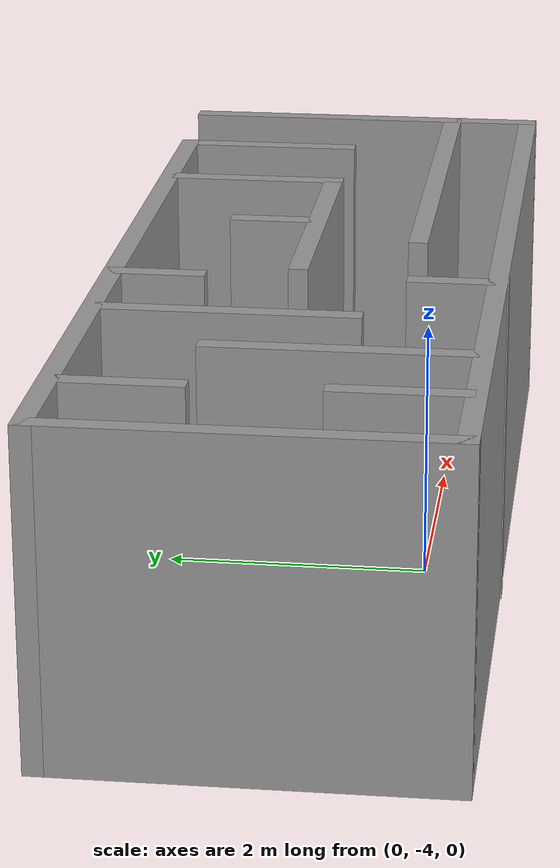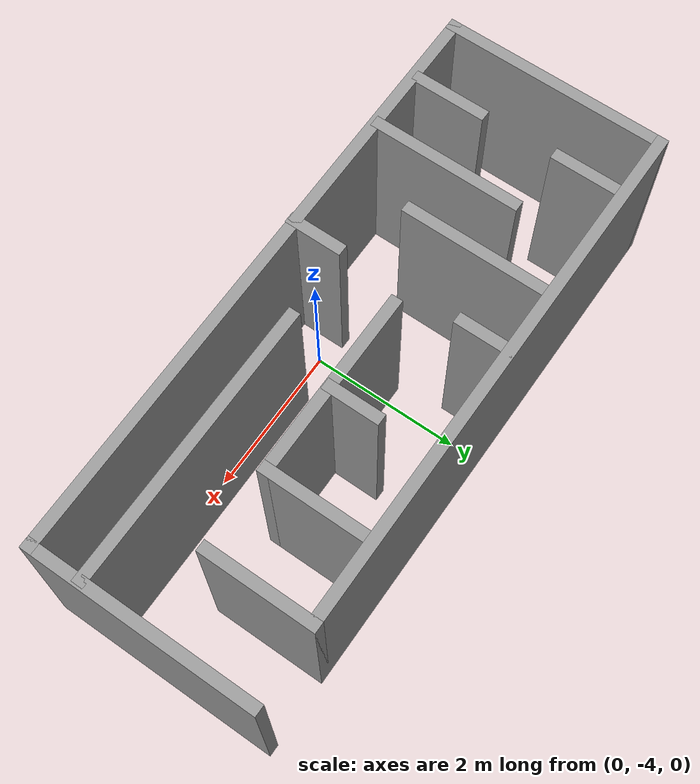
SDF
<?xml version='1.0'?>
<sdf version='1.6'>
  <model name='NewWorld'>
    <pose frame=''>0.305 -3.11 0 0 -0 0</pose>
    <link name='Wall_1'>
      <collision name='Wall_1_Collision'>
        <geometry>
          <box>
            <size>3 0.15 2.5</size>
          </box>
        </geometry>
        <pose frame=''>0 0 1.25 0 -0 0</pose>
      </collision>
      <visual name='Wall_1_Visual'>
        <pose frame=''>0 0 1.25 0 -0 0</pose>
        <geometry>
          <box>
            <size>3 0.15 2.5</size>
          </box>
        </geometry>
        <material>
          <script>
            <uri>file://media/materials/scripts/gazebo.material</uri>
            <name>Gazebo/Grey</name>
          </script>
          <ambient>1 1 1 1</ambient>
        </material>
        <meta>
          <layer>0</layer>
        </meta>
      </visual>
      <pose frame=''>-3.925 0.005 0 0 -0 -1.5708</pose>
    </link>
    <link name='Wall_10'>
      <collision name='Wall_10_Collision'>
        <geometry>
          <box>
            <size>1 0.15 2.5</size>
          </box>
        </geometry>
        <pose frame=''>0 0 1.25 0 -0 0</pose>
      </collision>
      <visual name='Wall_10_Visual'>
        <pose frame=''>0 0 1.25 0 -0 0</pose>
        <geometry>
          <box>
            <size>1 0.15 2.5</size>
          </box>
        </geometry>
        <material>
          <script>
            <uri>file://media/materials/scripts/gazebo.material</uri>
            <name>Gazebo/Grey</name>
          </script>
          <ambient>1 1 1 1</ambient>
        </material>
        <meta>
          <layer>0</layer>
        </meta>
      </visual>
      <pose frame=''>-3.075 -0.915 0 0 -0 1.5708</pose>
    </link>
    <link name='Wall_12'>
      <collision name='Wall_12_Collision'>
        <geometry>
          <box>
            <size>2 0.15 2.5</size>
          </box>
        </geometry>
        <pose frame=''>0 0 1.25 0 -0 0</pose>
      </collision>
      <visual name='Wall_12_Visual'>
        <pose frame=''>0 0 1.25 0 -0 0</pose>
        <geometry>
          <box>
            <size>2 0.15 2.5</size>
          </box>
        </geometry>
        <material>
          <script>
            <uri>file://media/materials/scripts/gazebo.material</uri>
            <name>Gazebo/Grey</name>
          </script>
          <ambient>1 1 1 1</ambient>
        </material>
        <meta>
          <layer>0</layer>
        </meta>
      </visual>
      <pose frame=''>-2.285 -0.445 0 0 -0 1.5708</pose>
    </link>
    <link name='Wall_14'>
      <collision name='Wall_14_Collision'>
        <geometry>
          <box>
            <size>2 0.15 2.5</size>
          </box>
        </geometry>
        <pose frame=''>0 0 1.25 0 -0 0</pose>
      </collision>
      <visual name='Wall_14_Visual'>
        <pose frame=''>0 0 1.25 0 -0 0</pose>
        <geometry>
          <box>
            <size>2 0.15 2.5</size>
          </box>
        </geometry>
        <material>
          <script>
            <uri>file://media/materials/scripts/gazebo.material</uri>
            <name>Gazebo/Grey</name>
          </script>
          <ambient>1 1 1 1</ambient>
        </material>
        <meta>
          <layer>0</layer>
        </meta>
      </visual>
      <pose frame=''>-1.555 0.485 0 0 -0 -1.5708</pose>
    </link>
    <link name='Wall_16'>
      <collision name='Wall_16_Collision'>
        <geometry>
          <box>
            <size>0.75 0.15 2.5</size>
          </box>
        </geometry>
        <pose frame=''>0 0 1.25 0 -0 0</pose>
      </collision>
      <visual name='Wall_16_Visual'>
        <pose frame=''>0 0 1.25 0 -0 0</pose>
        <geometry>
          <box>
            <size>0.75 0.15 2.5</size>
          </box>
        </geometry>
        <material>
          <script>
            <uri>file://media/materials/scripts/gazebo.material</uri>
            <name>Gazebo/Grey</name>
          </script>
          <ambient>1 1 1 1</ambient>
        </material>
        <meta>
          <layer>0</layer>
        </meta>
      </visual>
      <pose frame=''>-0.725 1.11 0 0 -0 -1.5708</pose>
    </link>
    <link name='Wall_19'>
      <collision name='Wall_19_Collision'>
        <geometry>
          <box>
            <size>0.75 0.15 2.5</size>
          </box>
        </geometry>
        <pose frame=''>0 0 1.25 0 -0 0</pose>
      </collision>
      <visual name='Wall_19_Visual'>
        <pose frame=''>0 0 1.25 0 -0 0</pose>
        <geometry>
          <box>
            <size>0.75 0.15 2.5</size>
          </box>
        </geometry>
        <material>
          <script>
            <uri>file://media/materials/scripts/gazebo.material</uri>
            <name>Gazebo/Grey</name>
          </script>
          <ambient>1 1 1 1</ambient>
        </material>
        <meta>
          <layer>0</layer>
        </meta>
      </visual>
      <pose frame=''>-0.685 -1.13 0 0 -0 1.5708</pose>
    </link>
    <link name='Wall_2'>
      <collision name='Wall_2_Collision'>
        <geometry>
          <box>
            <size>8 0.15 2.5</size>
          </box>
        </geometry>
        <pose frame=''>0 0 1.25 0 -0 0</pose>
      </collision>
      <visual name='Wall_2_Visual'>
        <pose frame=''>0 0 1.25 0 -0 0</pose>
        <geometry>
          <box>
            <size>8 0.15 2.5</size>
          </box>
        </geometry>
        <material>
          <script>
            <uri>file://media/materials/scripts/gazebo.material</uri>
            <name>Gazebo/Grey</name>
          </script>
          <ambient>1 1 1 1</ambient>
        </material>
        <meta>
          <layer>0</layer>
        </meta>
      </visual>
      <pose frame=''>-0 -1.42 0 0 -0 0</pose>
    </link>
    <link name='Wall_23'>
      <collision name='Wall_23_Collision'>
        <geometry>
          <box>
            <size>1.5 0.15 2.5</size>
          </box>
        </geometry>
        <pose frame=''>0 0 1.25 0 -0 0</pose>
      </collision>
      <visual name='Wall_23_Visual'>
        <pose frame=''>0 0 1.25 0 -0 0</pose>
        <geometry>
          <box>
            <size>1.5 0.15 2.5</size>
          </box>
        </geometry>
        <material>
          <script>
            <uri>file://media/materials/scripts/gazebo.material</uri>
            <name>Gazebo/Grey</name>
          </script>
          <ambient>1 1 1 1</ambient>
        </material>
        <meta>
          <layer>0</layer>
        </meta>
      </visual>
      <pose frame=''>1.875 0.745 0 0 -0 -1.5708</pose>
    </link>
    <link name='Wall_24'>
      <collision name='Wall_24_Collision'>
        <geometry>
          <box>
            <size>2.5 0.15 2.5</size>
          </box>
        </geometry>
        <pose frame=''>0 0 1.25 0 -0 0</pose>
      </collision>
      <visual name='Wall_24_Visual'>
        <pose frame=''>0 0 1.25 0 -0 0</pose>
        <geometry>
          <box>
            <size>2.5 0.15 2.5</size>
          </box>
        </geometry>
        <material>
          <script>
            <uri>file://media/materials/scripts/gazebo.material</uri>
            <name>Gazebo/Grey</name>
          </script>
          <ambient>1 1 1 1</ambient>
        </material>
        <meta>
          <layer>0</layer>
        </meta>
      </visual>
      <pose frame=''>0.7 0.07 0 0 -0 3.14159</pose>
    </link>
    <link name='Wall_26'>
      <collision name='Wall_26_Collision'>
        <geometry>
          <box>
            <size>0.75 0.15 2.5</size>
          </box>
        </geometry>
        <pose frame=''>0 0 1.25 0 -0 0</pose>
      </collision>
      <visual name='Wall_26_Visual'>
        <pose frame=''>0 0 1.25 0 -0 0</pose>
        <geometry>
          <box>
            <size>0.75 0.15 2.5</size>
          </box>
        </geometry>
        <material>
          <script>
            <uri>file://media/materials/scripts/gazebo.material</uri>
            <name>Gazebo/Grey</name>
          </script>
          <ambient>1 1 1 1</ambient>
        </material>
        <meta>
          <layer>0</layer>
        </meta>
      </visual>
      <pose frame=''>0.735 0.38 0 0 -0 -1.5708</pose>
    </link>
    <link name='Wall_28'>
      <collision name='Wall_28_Collision'>
        <geometry>
          <box>
            <size>3.75 0.15 2.5</size>
          </box>
        </geometry>
        <pose frame=''>0 0 1.25 0 -0 0</pose>
      </collision>
      <visual name='Wall_28_Visual'>
        <pose frame=''>0 0 1.25 0 -0 0</pose>
        <geometry>
          <box>
            <size>3.75 0.15 2.5</size>
          </box>
        </geometry>
        <material>
          <script>
            <uri>file://media/materials/scripts/gazebo.material</uri>
            <name>Gazebo/Grey</name>
          </script>
          <ambient>1 1 1 1</ambient>
        </material>
        <meta>
          <layer>0</layer>
        </meta>
      </visual>
      <pose frame=''>2.095 -0.76 0 0 -0 3.14159</pose>
    </link>
    <link name='Wall_3'>
      <collision name='Wall_3_Collision'>
        <geometry>
          <box>
            <size>3 0.15 2.5</size>
          </box>
        </geometry>
        <pose frame=''>0 0 1.25 0 -0 0</pose>
      </collision>
      <visual name='Wall_3_Visual'>
        <pose frame=''>0 0 1.25 0 -0 0</pose>
        <geometry>
          <box>
            <size>3 0.15 2.5</size>
          </box>
        </geometry>
        <material>
          <script>
            <uri>file://media/materials/scripts/gazebo.material</uri>
            <name>Gazebo/Grey</name>
          </script>
          <ambient>1 1 1 1</ambient>
        </material>
        <meta>
          <layer>0</layer>
        </meta>
      </visual>
      <pose frame=''>3.925 0.005 0 0 -0 1.5708</pose>
    </link>
    <link name='Wall_5'>
      <collision name='Wall_5_Collision'>
        <geometry>
          <box>
            <size>7 0.15 2.5</size>
          </box>
        </geometry>
        <pose frame=''>0 0 1.25 0 -0 0</pose>
      </collision>
      <visual name='Wall_5_Visual'>
        <pose frame=''>0 0 1.25 0 -0 0</pose>
        <geometry>
          <box>
            <size>7 0.15 2.5</size>
          </box>
        </geometry>
        <material>
          <script>
            <uri>file://media/materials/scripts/gazebo.material</uri>
            <name>Gazebo/Grey</name>
          </script>
          <ambient>1 1 1 1</ambient>
        </material>
        <meta>
          <layer>0</layer>
        </meta>
      </visual>
      <pose frame=''>-0.5 1.43 0 0 -0 0</pose>
    </link>
    <link name='Wall_6'>
      <collision name='Wall_6_Collision'>
        <geometry>
          <box>
            <size>1.5 0.15 2.5</size>
          </box>
        </geometry>
        <pose frame=''>0 0 1.25 0 -0 0</pose>
      </collision>
      <visual name='Wall_6_Visual'>
        <pose frame=''>0 0 1.25 0 -0 0</pose>
        <geometry>
          <box>
            <size>1.5 0.15 2.5</size>
          </box>
        </geometry>
        <material>
          <script>
            <uri>file://media/materials/scripts/gazebo.material</uri>
            <name>Gazebo/Grey</name>
          </script>
          <ambient>1 1 1 1</ambient>
        </material>
        <meta>
          <layer>0</layer>
        </meta>
      </visual>
      <pose frame=''>2.925 0.755 0 0 -0 -1.5708</pose>
    </link>
    <link name='Wall_8'>
      <collision name='Wall_8_Collision'>
        <geometry>
          <box>
            <size>1 0.15 2.5</size>
          </box>
        </geometry>
        <pose frame=''>0 0 1.25 0 -0 0</pose>
      </collision>
      <visual name='Wall_8_Visual'>
        <pose frame=''>0 0 1.25 0 -0 0</pose>
        <geometry>
          <box>
            <size>1 0.15 2.5</size>
          </box>
        </geometry>
        <material>
          <script>
            <uri>file://media/materials/scripts/gazebo.material</uri>
            <name>Gazebo/Grey</name>
          </script>
          <ambient>1 1 1 1</ambient>
        </material>
        <meta>
          <layer>0</layer>
        </meta>
      </visual>
      <pose frame=''>-3.105 0.995 0 0 -0 -1.5708</pose>
    </link>
    <static>1</static>
  </model>
</sdf>
